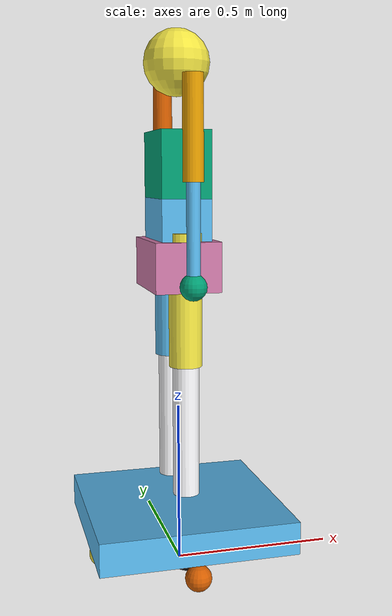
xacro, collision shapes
<?xml version="1.0"?>
<robot xmlns:xacro="http://www.ros.org/wiki/xacro" name="archer">
  <xacro:arg name="use_cuvslam" default="false"/>

  <!-- Archer: Overhauled with Professional 1X Technologies Humanoid Meshes      -->

  <xacro:include filename="materials.xacro" />
  <xacro:include filename="inertials.xacro" />
  <xacro:include filename="archer_gazebo.xacro" />

  <!-- Unified mesh orientation (aligned with local coordinate frames for both Gazebo and RViz) -->
  <xacro:property name="mesh_rpy" value="1.5707963 0 1.5707963"/>

  <!-- Base Footprint (Root Link) -->
  <link name="base_footprint">
    <xacro:box_inertia m="5.0" w="0.6" h="0.6" d="0.1"/>
  </link>

  <joint name="base_footprint_joint" type="fixed">
    <parent link="base_footprint"/>
    <child link="base_link"/>
    <origin xyz="0 0 0" rpy="0 0 0"/>
  </joint>

  <!-- Base Link -->
  <link name="base_link">

    <!-- Raised collision so it doesn't drag -->
    <collision>
      <origin xyz="0 0 0.15" rpy="0 0 0"/>
      <geometry><box size="0.6 0.6 0.1"/></geometry>
    </collision>
    <xacro:box_inertia m="5.0" w="0.6" h="0.6" d="0.1"/>
  </link>

  <!-- Caster Wheels for upright stability and traction -->
  <link name="front_caster">
    <collision>
      <origin xyz="0 0 0" rpy="0 0 0"/>
      <geometry><sphere radius="0.04"/></geometry>
    </collision>

    <xacro:sphere_inertia m="1.0" r="0.04"/>
  </link>
  <joint name="front_caster_joint" type="continuous">
    <parent link="base_link"/>
    <child link="front_caster"/>
    <origin xyz="0.25 0 0.04" rpy="0 0 0"/>
    <axis xyz="0 1 0"/>
  </joint>

  <link name="rear_caster">
    <collision>
      <origin xyz="0 0 0" rpy="0 0 0"/>
      <geometry><sphere radius="0.04"/></geometry>
    </collision>

    <xacro:sphere_inertia m="1.0" r="0.04"/>
  </link>
  <joint name="rear_caster_joint" type="continuous">
    <parent link="base_link"/>
    <child link="rear_caster"/>
    <origin xyz="-0.25 0 0.04" rpy="0 0 0"/>
    <axis xyz="0 1 0"/>
  </joint>

  <link name="left_stabilizer">
    <collision>
      <origin xyz="0 0 0" rpy="0 0 0"/>
      <geometry><sphere radius="0.04"/></geometry>
    </collision>
    <xacro:sphere_inertia m="1.0" r="0.04"/>
  </link>
  <joint name="left_stabilizer_joint" type="continuous">
    <parent link="base_link"/>
    <child link="left_stabilizer"/>
    <origin xyz="0 0.25 0.04" rpy="0 0 0"/>
    <axis xyz="0 1 0"/>
  </joint>

  <link name="right_stabilizer">
    <collision>
      <origin xyz="0 0 0" rpy="0 0 0"/>
      <geometry><sphere radius="0.04"/></geometry>
    </collision>
    <xacro:sphere_inertia m="1.0" r="0.04"/>
  </link>
  <joint name="right_stabilizer_joint" type="continuous">
    <parent link="base_link"/>
    <child link="right_stabilizer"/>
    <origin xyz="0 -0.25 0.04" rpy="0 0 0"/>
    <axis xyz="0 1 0"/>
  </joint>

  <joint name="base_joint" type="fixed">
    <parent link="base_link"/><child link="Pelvis"/>
    <origin xyz="0 0 0.95" rpy="0 0 0"/>
  </joint>

  <gazebo reference="front_caster">
    <mu1>0.0</mu1><mu2>0.0</mu2>
  </gazebo>

  <gazebo reference="rear_caster">
    <mu1>0.0</mu1><mu2>0.0</mu2>
  </gazebo>

  <gazebo reference="left_stabilizer">
    <mu1>0.0</mu1><mu2>0.0</mu2>
  </gazebo>

  <gazebo reference="right_stabilizer">
    <mu1>0.0</mu1><mu2>0.0</mu2>
  </gazebo>

  <gazebo reference="left_wheel">
    <mu1>1000.0</mu1><mu2>1000.0</mu2>
  </gazebo>

  <gazebo reference="right_wheel">
    <mu1>1000.0</mu1><mu2>1000.0</mu2>
  </gazebo>

  <!-- Pelvis -->
  <link name="Pelvis">
    <!-- Professional 1X Torso Mannequin Mesh -->
    <visual>
      <origin xyz="0 0 0" rpy="${mesh_rpy}"/>
      <geometry>
        <mesh filename="file://$(find archer_description)/meshes/torso.obj" scale="1.0 1.0 1.0"/>
      </geometry>
    </visual>
    <collision><geometry><box size="0.2 0.3 0.15"/></geometry></collision>
    <xacro:box_inertia m="5.0" w="0.2" h="0.3" d="0.15"/>
  </link>

  <!-- Wheels (Hidden visually inside/under the signature Neo white sneakers) -->
  <link name="left_wheel">
    <visual>
      <origin xyz="0 0 0" rpy="0 0 0"/>
      <geometry><sphere radius="0.05"/></geometry>
      <material name="neo_matte_black"/>
    </visual>
    <collision><geometry><sphere radius="0.05"/></geometry></collision>
    <xacro:sphere_inertia m="2.0" r="0.05"/>
  </link>
  <joint name="left_wheel_joint" type="continuous">
    <parent link="base_link"/><child link="left_wheel"/>
    <origin xyz="0 0.1 0.05" rpy="0 0 0"/><axis xyz="0 1 0"/>
  </joint>

  <link name="right_wheel">
    <visual>
      <origin xyz="0 0 0" rpy="0 0 0"/>
      <geometry><sphere radius="0.05"/></geometry>
      <material name="neo_matte_black"/>
    </visual>
    <collision><geometry><sphere radius="0.05"/></geometry></collision>
    <xacro:sphere_inertia m="2.0" r="0.05"/>
  </link>
  <joint name="right_wheel_joint" type="continuous">
    <parent link="base_link"/><child link="right_wheel"/>
    <origin xyz="0 -0.1 0.05" rpy="0 0 0"/><axis xyz="0 1 0"/>
  </joint>

  <!-- Torso Segment 1: Lower Trunk (Flexible Waist) -->
  <link name="LowerTrunk">
    <!-- Professional 1X Abdomen Mesh -->
    <visual>
      <origin xyz="0 0 0" rpy="${mesh_rpy}"/>
      <geometry>
        <mesh filename="file://$(find archer_description)/meshes/abdomen.obj" scale="1.0 1.0 1.0"/>
      </geometry>
    </visual>
    <collision><geometry><box size="0.15 0.25 0.2"/></geometry></collision>
    <xacro:box_inertia m="5.0" w="0.15" h="0.25" d="0.2"/>
  </link>

  <joint name="jL5S1_roty" type="fixed">
    <parent link="Pelvis"/><child link="LowerTrunk"/>
    <origin xyz="0 0 0.1" rpy="0 0 0"/>
  </joint>

  <!-- Torso Segment 2: Upper Trunk (Chest / Shoulders) -->
  <link name="UpperTrunk">
    <!-- Professional 1X Scapula / Shoulder Connector Mesh -->
    <visual>
      <origin xyz="0 0 0.1" rpy="${mesh_rpy}"/>
      <geometry>
        <mesh filename="file://$(find archer_description)/meshes/scapula.obj" scale="1.0 1.0 1.0"/>
      </geometry>
    </visual>
    <collision><geometry><box size="0.15 0.25 0.2"/></geometry></collision>
    <xacro:box_inertia m="5.0" w="0.15" h="0.25" d="0.2"/>
  </link>

  <joint name="jT9T8_roty" type="fixed">
    <parent link="LowerTrunk"/><child link="UpperTrunk"/>
    <origin xyz="0 0 0.2" rpy="0 0 0"/>
  </joint>

  <!-- Head (Sleek Visor Helmet with Emotive Rings) -->
  <link name="Head">
    <!-- Professional 1X Head Mesh -->
    <visual>
      <origin xyz="0 0 0" rpy="${mesh_rpy}"/>
      <geometry>
        <mesh filename="file://$(find archer_description)/meshes/head.obj" scale="1.0 1.0 1.0"/>
      </geometry>
    </visual>
    <collision><geometry><sphere radius="0.1"/></geometry></collision>
    <xacro:sphere_inertia m="2.0" r="0.1"/>
  </link>

  <joint name="jT1C7_roty" type="fixed">
    <parent link="UpperTrunk"/><child link="Head"/>
    <origin xyz="0 0 0.3" rpy="0 0 0"/>
  </joint>

  <!-- Sensor Links (for perfect Gazebo/ROS TF alignment) -->
  <link name="head_camera_link"/>
  <joint name="head_camera_joint" type="fixed">
    <parent link="Head"/>
    <child link="head_camera_link"/>
    <origin xyz="0.2 0 0.1" rpy="0 0 0"/>
  </joint>

  <!-- Stereo Camera Links (cuVSLAM) — 12 cm baseline, child of head_camera_link -->
  <link name="camera_left_link"/>
  <joint name="camera_left_joint" type="fixed">
    <parent link="head_camera_link"/>
    <child link="camera_left_link"/>
    <origin xyz="0 0.06 0" rpy="0 0 0"/>
  </joint>

  <link name="camera_right_link"/>
  <joint name="camera_right_joint" type="fixed">
    <parent link="head_camera_link"/>
    <child link="camera_right_link"/>
    <origin xyz="0 -0.06 0" rpy="0 0 0"/>
  </joint>

  <link name="base_lidar_link"/>
  <joint name="base_lidar_joint" type="fixed">
    <parent link="Head"/>
    <child link="base_lidar_link"/>
    <origin xyz="0.2 0 0.1" rpy="0 0 0"/>
  </joint>

  <link name="torso_lidar_link"/>
  <joint name="torso_lidar_joint" type="fixed">
    <parent link="Pelvis"/>
    <child link="torso_lidar_link"/>
    <origin xyz="0 0 0.20" rpy="0 0 0"/>
  </joint>

  <!-- LEGS MACRO (Fully Functional Revolute Thighs, Calves, & Hidden Wheels in Sneakers) -->
  <xacro:macro name="archer_leg" params="side reflect">
    <link name="${side}UpperLeg">
      <!-- Professional 1X Thigh Mesh -->
      <visual>
        <origin xyz="0 0 0" rpy="${mesh_rpy}"/>
        <geometry>
          <mesh filename="file://$(find archer_description)/meshes/thigh.obj" scale="1.0 1.0 1.0"/>
        </geometry>
      </visual>
      <collision><geometry><cylinder radius="0.05" length="0.4"/></geometry></collision>
      <xacro:cylinder_inertia m="3.0" r="0.05" l="0.4"/>
    </link>

    <joint name="j${side}Hip_roty" type="fixed">
      <parent link="Pelvis"/><child link="${side}UpperLeg"/>
      <origin xyz="0 ${reflect*0.1} -0.1" rpy="0 0 0"/>
    </joint>

    <link name="${side}LowerLeg">
      <!-- Professional 1X Shin Mesh -->
      <visual>
        <origin xyz="0 0 0" rpy="${mesh_rpy}"/>
        <geometry>
          <mesh filename="file://$(find archer_description)/meshes/shin.obj" scale="1.0 1.0 1.0"/>
        </geometry>
      </visual>

      <!-- signature 1X NEO Athletic Knit Sneaker at bottom -->
      <!-- White sole -->
      <visual>
        <origin xyz="0.04 0 -0.34" rpy="0 0 0"/>
        <geometry><box size="0.22 0.10 0.04"/></geometry>
        <material name="neo_sneaker_white"/>
      </visual>
      <!-- Black sole tread -->
      <visual>
        <origin xyz="0.04 0 -0.36" rpy="0 0 0"/>
        <geometry><box size="0.224 0.104 0.01"/></geometry>
        <material name="neo_matte_black"/>
      </visual>
      <!-- Knit sneaker upper body (Knit grey) -->
      <visual>
        <origin xyz="0.03 0 -0.28" rpy="0 0.15 0"/>
        <geometry><box size="0.18 0.09 0.08"/></geometry>
        <material name="neo_knit_gray"/>
      </visual>
      <!-- Sneaker heel cap wrap (Matte black) -->
      <visual>
        <origin xyz="-0.04 0 -0.29" rpy="0 0 0"/>
        <geometry><box size="0.05 0.092 0.082"/></geometry>
        <material name="neo_matte_black"/>
      </visual>
      <!-- White sneaker collar / ankle cuff -->
      <visual>
        <origin xyz="0 0 -0.22" rpy="0 0 0"/>
        <geometry><cylinder radius="0.045" length="0.04"/></geometry>
        <material name="neo_sneaker_white"/>
      </visual>

      <collision><geometry><cylinder radius="0.04" length="0.4"/></geometry></collision>
      <xacro:cylinder_inertia m="2.0" r="0.04" l="0.4"/>
    </link>

    <joint name="j${side}Knee_roty" type="fixed">
      <parent link="${side}UpperLeg"/><child link="${side}LowerLeg"/>
      <origin xyz="0 0 -0.4" rpy="0 0 0"/>
    </joint>
  </xacro:macro>

  <xacro:archer_leg side="Left" reflect="1"/>
  <xacro:archer_leg side="Right" reflect="-1"/>

  <!-- ARMS MACRO (Fully Functional Revolute Shoulders & Elbows, with Mitten Hands) -->
  <xacro:macro name="archer_arm" params="side reflect">
    <link name="${side}UpperArm">
      <!-- Professional 1X Upper Arm Mesh -->
      <visual>
        <origin xyz="0 0 0" rpy="${mesh_rpy}"/>
        <geometry>
          <mesh filename="file://$(find archer_description)/meshes/upper_arm.obj" scale="1.0 1.0 1.0"/>
        </geometry>
      </visual>
      <collision><geometry><cylinder radius="0.03" length="0.3"/></geometry></collision>
      <xacro:cylinder_inertia m="1.5" r="0.03" l="0.3"/>
    </link>

    <joint name="j${side}Shoulder_roty" type="fixed">
      <parent link="UpperTrunk"/><child link="${side}UpperArm"/>
      <origin xyz="0 ${reflect*0.2} 0.1" rpy="0 0 0"/>
    </joint>

    <link name="${side}LowerArm">
      <!-- Professional 1X Forearm Mesh -->
      <visual>
        <origin xyz="0 0 0" rpy="${mesh_rpy}"/>
        <geometry>
          <mesh filename="file://$(find archer_description)/meshes/forearm.obj" scale="1.0 1.0 1.0"/>
        </geometry>
      </visual>
      <collision><geometry><cylinder radius="0.02" length="0.3"/></geometry></collision>
      <xacro:cylinder_inertia m="1.0" r="0.02" l="0.3"/>
    </link>

    <joint name="j${side}Elbow_roty" type="fixed">
      <parent link="${side}UpperArm"/><child link="${side}LowerArm"/>
      <origin xyz="0 0 -0.3" rpy="0 0 0"/>
    </joint>

    <!-- Hand (Robotic Mitten styled in high-fidelity 1X Neo aesthetic) -->
    <link name="${side}Hand">
      <!-- Professional 1X Palm Mesh -->
      <visual>
        <origin xyz="0 0 0" rpy="1.5707963 3.14159265 1.5707963"/>
        <geometry>
          <mesh filename="file://$(find archer_description)/meshes/palm.obj" scale="1.0 1.0 1.0"/>
        </geometry>
      </visual>
      <collision><geometry><sphere radius="0.04"/></geometry></collision>
      <xacro:sphere_inertia m="0.5" r="0.04"/>
    </link>
    <joint name="j${side}Wrist_fixed" type="fixed">
      <parent link="${side}LowerArm"/><child link="${side}Hand"/>
      <origin xyz="0 0 -0.15"/>
    </joint>
  </xacro:macro>

  <xacro:archer_arm side="Left" reflect="1"/>
  <xacro:archer_arm side="Right" reflect="-1"/>

</robot>

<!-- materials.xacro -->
<robot xmlns:xacro="http://www.ros.org/wiki/xacro">

  <!-- 1X Neo Premium Palette (Domestic Humanoid Design)                          -->

  <!-- Premium space-grey knit jumpsuit texture representation -->
  <material name="neo_knit_gray">
    <color rgba="0.36 0.36 0.38 1.0"/>
  </material>

  <!-- Dark charcoal for underlying joints and compliant rubberized covers -->
  <material name="neo_matte_black">
    <color rgba="0.08 0.08 0.09 1.0"/>
  </material>

  <!-- Deep glossy black for the head visor faceplate -->
  <material name="neo_visor_black">
    <color rgba="0.015 0.015 0.02 1.0"/>
  </material>

  <!-- High-contrast pure white for the signature sneakers and chest grilles -->
  <material name="neo_sneaker_white">
    <color rgba="0.96 0.96 0.97 1.0"/>
  </material>

  <!-- Friendly amber-orange status LED glow for the ears and chest rings -->
  <material name="neo_led_glow">
    <color rgba="0.96 0.48 0.08 1.0"/>
  </material>

  <!-- Completely transparent helper material -->
  <material name="transparent">
    <color rgba="0.0 0.0 0.0 0.0"/>
  </material>

  <!-- Basic blue and white kept for compatibility if needed -->
  <material name="blue">
    <color rgba="0.0 0.0 0.8 1.0"/>
  </material>

  <material name="white">
    <color rgba="1.0 1.0 1.0 1.0"/>
  </material>

  <material name="grey">
    <color rgba="0.5 0.5 0.5 1.0"/>
  </material>

  <material name="black">
    <color rgba="0.0 0.0 0.0 1.0"/>
  </material>

</robot>

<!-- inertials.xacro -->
<robot xmlns:xacro="http://www.ros.org/wiki/xacro">

  <!-- Box Inertia Macro -->
  <xacro:macro name="box_inertia" params="m w h d">
    <inertial>
      <origin xyz="0 0 0" rpy="0 0 0"/>
      <mass value="${m}"/>
      <inertia ixx="${(m/12.0) * (h*h + d*d)}" ixy="0.0" ixz="0.0"
               iyy="${(m/12.0) * (w*w + d*d)}" iyz="0.0"
               izz="${(m/12.0) * (w*w + h*h)}"/>
    </inertial>
  </xacro:macro>

  <!-- Cylinder Inertia Macro -->
  <xacro:macro name="cylinder_inertia" params="m r l">
    <inertial>
      <origin xyz="0 0 0" rpy="0 0 0"/>
      <mass value="${m}"/>
      <inertia ixx="${(m/12.0) * (3*r*r + l*l)}" ixy="0.0" ixz="0.0"
               iyy="${(m/12.0) * (3*r*r + l*l)}" iyz="0.0"
               izz="${(m/2.0) * (r*r)}"/>
    </inertial>
  </xacro:macro>

  <!-- Sphere Inertia Macro -->
  <xacro:macro name="sphere_inertia" params="m r">
    <inertial>
      <origin xyz="0 0 0" rpy="0 0 0"/>
      <mass value="${m}"/>
      <inertia ixx="${(2.0/5.0) * m * (r*r)}" ixy="0.0" ixz="0.0"
               iyy="${(2.0/5.0) * m * (r*r)}" iyz="0.0"
               izz="${(2.0/5.0) * m * (r*r)}"/>
    </inertial>
  </xacro:macro>

  <!-- Ballast Inertia Macro (Virtual Gyroscope for Extreme Stability) -->
  <xacro:macro name="ballast_inertia" params="m w h d">
    <inertial>
      <!-- Standard anchor to avoid physics solver glitches -->
      <origin xyz="0 0 0" rpy="0 0 0"/>
      <mass value="${m}"/>
      <inertia ixx="100.0" ixy="0.0" ixz="0.0"
               iyy="100.0" iyz="0.0"
               izz="${(m/12.0) * (w*w + h*h)}"/>
    </inertial>
  </xacro:macro>

</robot>
